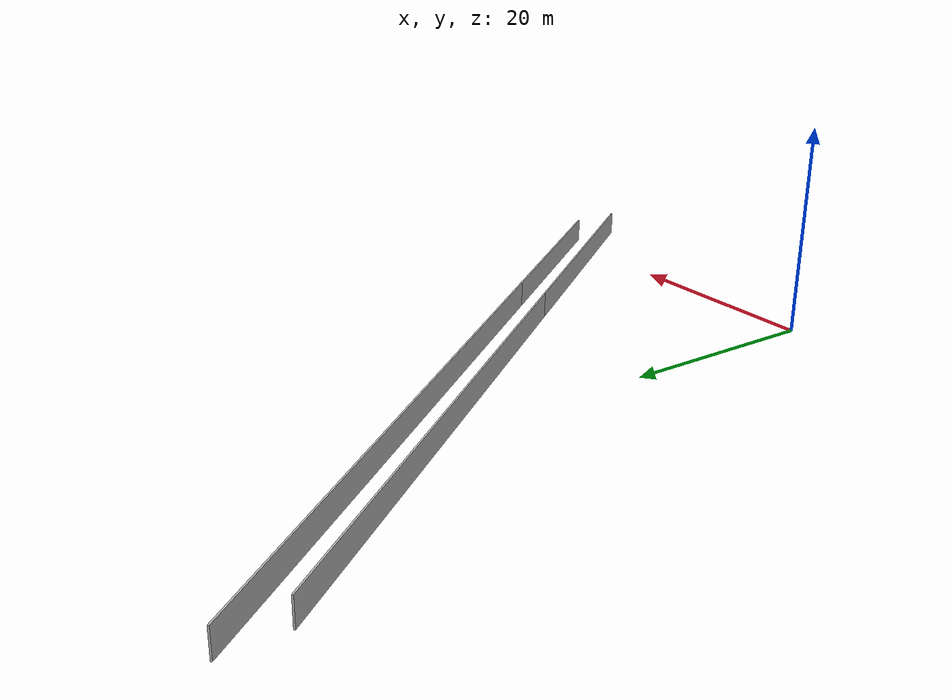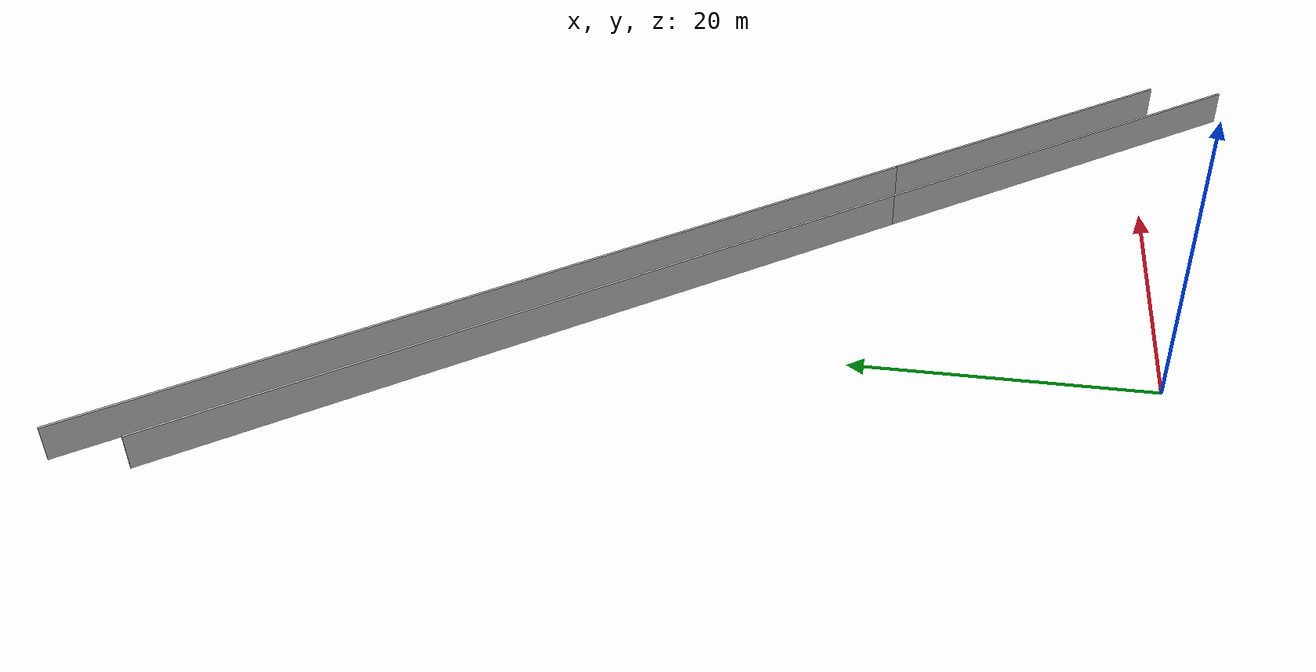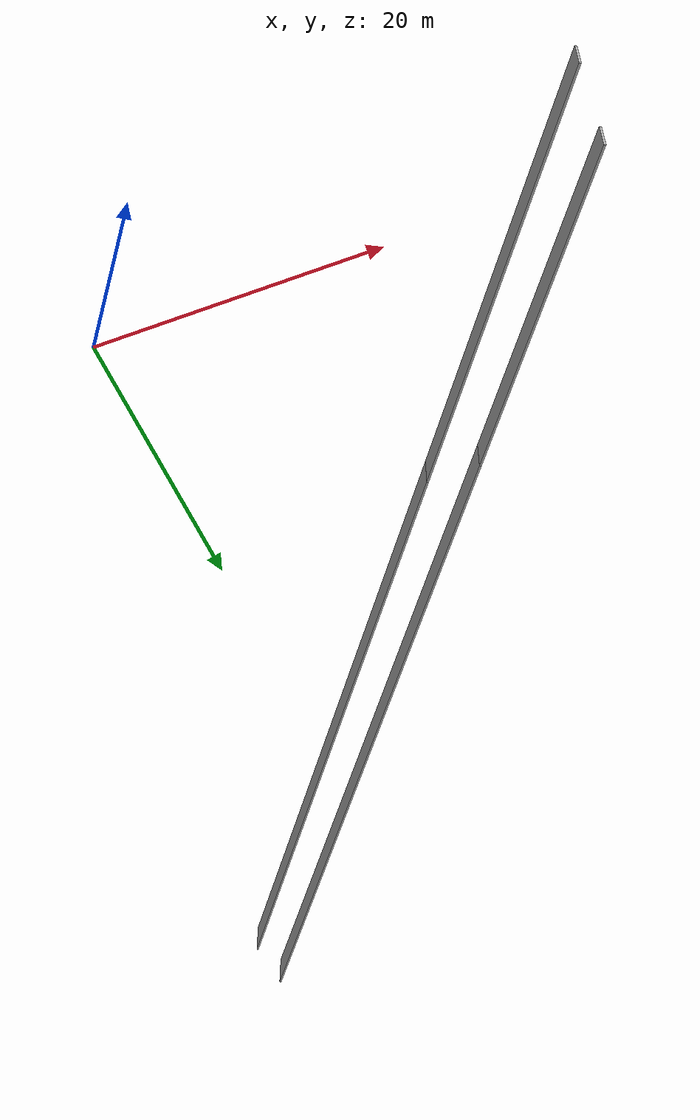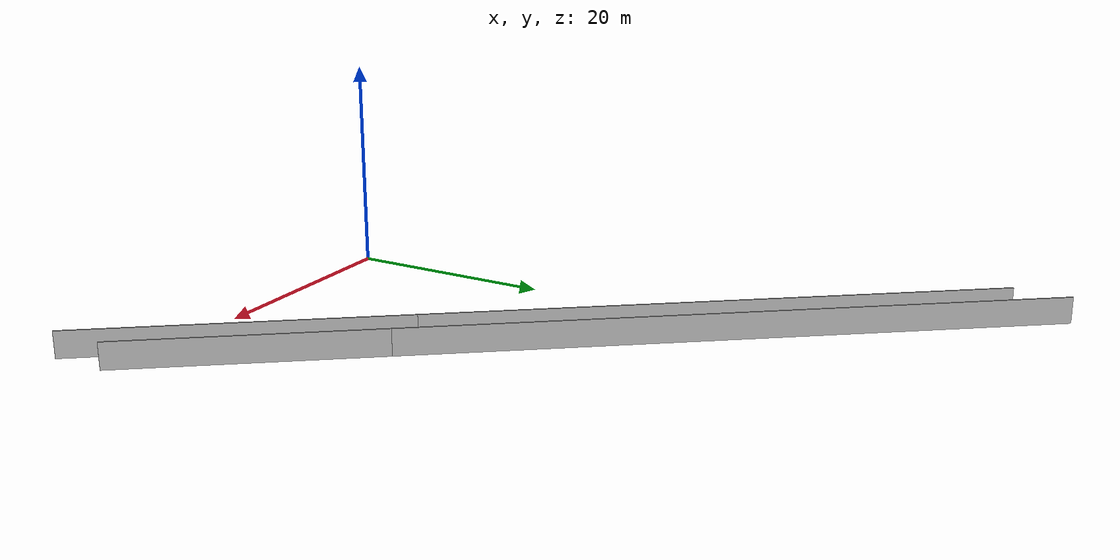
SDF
<?xml version="1.0" ?>
<sdf version="1.6">
  <model name="sps_4927">
    <pose frame="">0 0 0 0 -0 0</pose>
    <static>1</static>
    <self_collide>0</self_collide>
    <allow_auto_disable>0</allow_auto_disable>
    <link name="Wall164">
      <kinematic>0</kinematic>
      <gravity>1</gravity>
      <self_collide>0</self_collide>
      <collision name="collision">
        <geometry>
          <box>
            <size>30.5494 0.15 2.5</size>
          </box>
        </geometry>
        <pose frame="">0 0 0 0 -0 0</pose>
      </collision>
      <visual name="visual">
        <geometry>
          <box>
            <size>30.5494 0.15 2.5</size>
          </box>
        </geometry>
        <pose frame="">0 0 0 0 -0 0</pose>
        <cast_shadows>1</cast_shadows>
        <transparency>0.0</transparency>
      </visual>
      <pose frame="">25.4694 5.55147 1.25 0 -0 2.20088</pose>
    </link>
    <link name="Wall165">
      <kinematic>0</kinematic>
      <gravity>1</gravity>
      <self_collide>0</self_collide>
      <collision name="collision">
        <geometry>
          <box>
            <size>54.3097 0.15 2.5</size>
          </box>
        </geometry>
        <pose frame="">0 0 0 0 -0 0</pose>
      </collision>
      <visual name="visual">
        <geometry>
          <box>
            <size>54.3097 0.15 2.5</size>
          </box>
        </geometry>
        <pose frame="">0 0 0 0 -0 0</pose>
        <cast_shadows>1</cast_shadows>
        <transparency>0.0</transparency>
      </visual>
      <pose frame="">0.469411 39.8336 1.25 0 -0 2.20088</pose>
    </link>
    <link name="Wall397">
      <kinematic>0</kinematic>
      <gravity>1</gravity>
      <self_collide>0</self_collide>
      <collision name="collision">
        <geometry>
          <box>
            <size>24.0377 0.15 2.5</size>
          </box>
        </geometry>
        <pose frame="">0 0 0 0 -0 0</pose>
      </collision>
      <visual name="visual">
        <geometry>
          <box>
            <size>24.0377 0.15 2.5</size>
          </box>
        </geometry>
        <pose frame="">0 0 0 0 -0 0</pose>
        <cast_shadows>1</cast_shadows>
        <transparency>0.0</transparency>
      </visual>
      <pose frame="">27.3878 8.1821 1.25 0 -0 2.20088</pose>
    </link>
    <link name="Wall398">
      <kinematic>0</kinematic>
      <gravity>1</gravity>
      <self_collide>0</self_collide>
      <collision name="collision">
        <geometry>
          <box>
            <size>60.8213 0.15 2.5</size>
          </box>
        </geometry>
        <pose frame="">0 0 0 0 -0 0</pose>
      </collision>
      <visual name="visual">
        <geometry>
          <box>
            <size>60.8213 0.15 2.5</size>
          </box>
        </geometry>
        <pose frame="">0 0 0 0 -0 0</pose>
        <cast_shadows>1</cast_shadows>
        <transparency>0.0</transparency>
      </visual>
      <pose frame="">2.38777 42.4642 1.25 0 -0 2.20088</pose>
    </link>
  </model>
</sdf>
